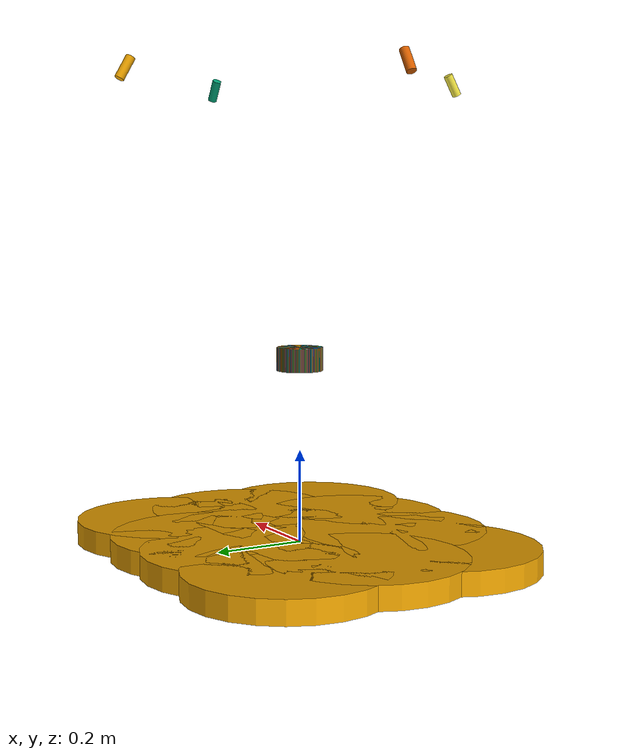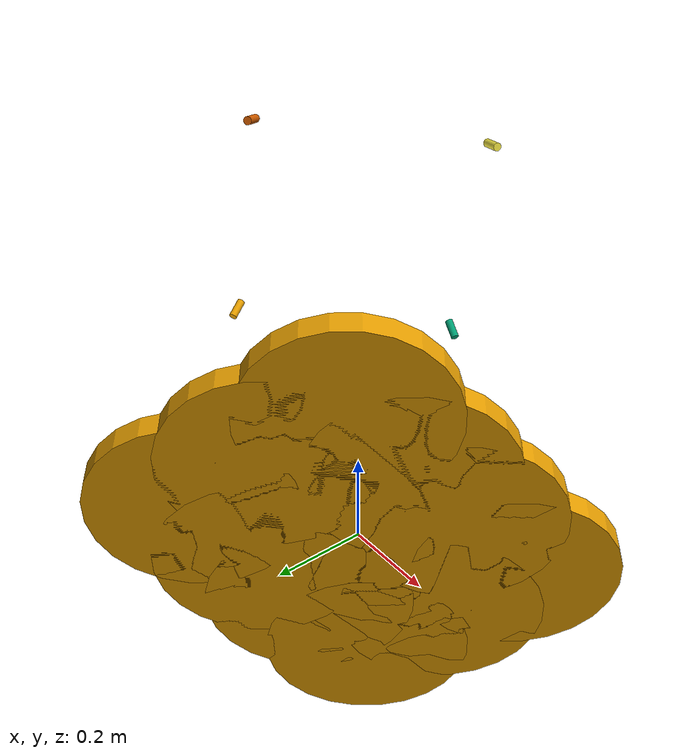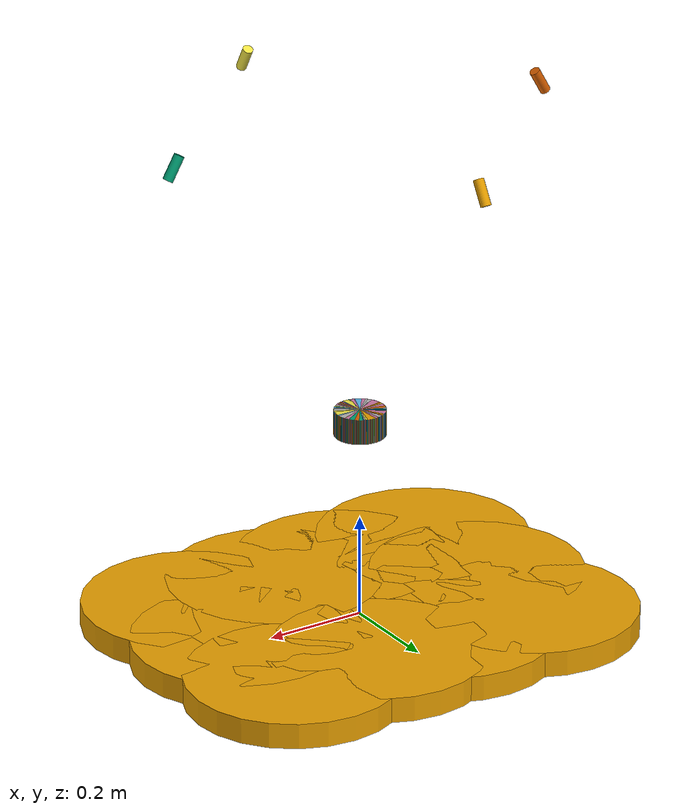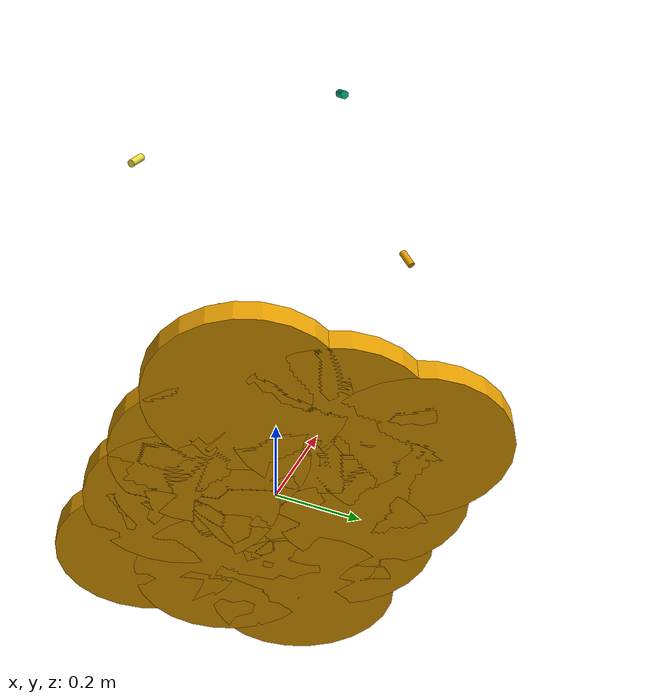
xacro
<?xml version="1.0"?>
<robot name="robot" xmlns:xacro="http://ros.org/wiki/xacro">

    <!-- Simulation Plugins -->
    <gazebo>
        <gravity>0</gravity>
        <self_collide>0</self_collide>

        <plugin name="gazebo_planar_move_plugin" filename="libgazebo_planar_move_plugin.so">
            <robot_namespace>/</robot_namespace>
            <robot_frame>base_link</robot_frame>
            <odometry_frame>odom</odometry_frame>
            <odometry_topic>odom</odometry_topic>
            <command_topic>cmd_vel</command_topic>
            <control_mode>position</control_mode>
            <publish_odometry>true</publish_odometry>
            <publish_tf>true</publish_tf>
        </plugin>
    </gazebo>

    <xacro:macro name="robot_circle" params="x_offset y_offset radius">
        <visual>
            <origin xyz="${x_offset} ${y_offset} 0" />
            <geometry>
                <cylinder length="0.05" radius="${radius}" />
            </geometry>
        </visual>
        <collision>
            <origin xyz="${x_offset} ${y_offset} 0" />
            <geometry>
                <cylinder length="0.05" radius="${radius}" />
            </geometry>
        </collision>
    </xacro:macro>

    <link name="base_link">
        <xacro:robot_circle x_offset="-0.268" y_offset=" 0.000" radius="0.210" />
        <xacro:robot_circle x_offset=" 0.268" y_offset=" 0.000" radius="0.210" />
        <xacro:robot_circle x_offset=" 0.265" y_offset="-0.185" radius="0.210" />
        <xacro:robot_circle x_offset=" 0.077" y_offset="-0.185" radius="0.210" />
        <xacro:robot_circle x_offset="-0.077" y_offset="-0.185" radius="0.210" />
        <xacro:robot_circle x_offset="-0.265" y_offset="-0.185" radius="0.210" />
        <xacro:robot_circle x_offset=" 0.265" y_offset=" 0.185" radius="0.210" />
        <xacro:robot_circle x_offset="-0.265" y_offset=" 0.185" radius="0.210" />
        <xacro:robot_circle x_offset="-0.077" y_offset=" 0.185" radius="0.210" />
        <xacro:robot_circle x_offset=" 0.077" y_offset=" 0.185" radius="0.210" />
        <inertial>
            <origin xyz="0 0 0" rpy="0 0 0" />
            <mass value="1" />
            <inertia
                ixx="1" ixy="0" ixz="0"
                iyy="1" iyz="0"
                izz="1" />
        </inertial>
    </link>

    <xacro:macro name="laser_sensor" params="suffix rotation">
        <joint name="laser_joint_${suffix}" type="fixed">
            <origin xyz="0 0 0.4" rpy="0 0 ${rotation}" />
            <child link="laser_${suffix}" />
            <parent link="base_link" />
        </joint>
        <link name="laser_${suffix}">
            <visual>
                <origin xyz="0 0 0" />
                <geometry>
                    <cylinder length="0.05" radius="0.05" />
                </geometry>
            </visual>
            <collision>
                <origin xyz="0 0 0" />
                <geometry>
                    <cylinder length="0.05" radius="0.05" />
                </geometry>
            </collision>
            <inertial>
                <mass value="1" />
                <origin xyz="0 0 0" />
                <inertia
                    ixx="1" ixy="0" ixz="0"
                    iyy="1" iyz="0"
                    izz="1" />
            </inertial>
        </link>
        <gazebo reference="laser_${suffix}">
            <sensor type="ray" name="laser_${suffix}">
                <pose>0 0 0 0 0 0</pose>
                <visualize>false</visualize>
                <update_rate>40</update_rate>
                <ray>
                    <scan>
                        <horizontal>
                            <samples>540</samples>
                            <resolution>1</resolution>
                            <min_angle>-2.35619</min_angle>
                            <max_angle>2.35619</max_angle>
                        </horizontal>
                    </scan>
                    <range>
                        <min>0.1</min>
                        <max>30.0</max>
                        <resolution>0.01</resolution>
                    </range>
                    <noise>
                        <type>gaussian</type>
                        <mean>0.0</mean>
                        <stddev>0.001</stddev>
                    </noise>
                </ray>
                <plugin name="gazebo_laser_plugin" filename="libgazebo_laser_plugin.so">
                    <frame_name>laser_${suffix}</frame_name>
                    <robot_namespace>/</robot_namespace>
                </plugin>
            </sensor>
        </gazebo>
    </xacro:macro>

    <xacro:laser_sensor suffix="front" rotation="0.0" />
    <xacro:laser_sensor suffix="back" rotation="${pi}" />

    <xacro:macro name="sonar_sensor" params="suffix rotation">
        <joint name="sonar_${suffix}_joint" type="fixed">
            <origin xyz="0 0 0.4" rpy="0 0 ${rotation}" />
            <child link="sonar_${suffix}" />
            <parent link="base_link" />
        </joint>
        <link name="sonar_${suffix}">
            <visual>
                <origin xyz="0 0 0" />
                <geometry>
                    <cylinder length="0.05" radius="0.05" />
                </geometry>
            </visual>
            <collision>
                <origin xyz="0 0 0" />
                <geometry>
                    <cylinder length="0.05" radius="0.05" />
                </geometry>
            </collision>
            <inertial>
                <mass value="1" />
                <origin xyz="0 0 0" />
                <inertia
                    ixx="1" ixy="0" ixz="0"
                    iyy="1" iyz="0"
                    izz="1" />
            </inertial>
        </link>
        <gazebo reference="sonar_${suffix}">
            <sensor type="ray" name="sonar_${suffix}">
                <pose>0 0 0 0 0 0</pose>
                <visualize>false</visualize>
                <update_rate>10</update_rate>
                <ray>
                    <scan>
                        <horizontal>
                            <samples>10</samples>
                            <resolution>1</resolution>
                            <min_angle>-0.4</min_angle>
                            <max_angle>0.4</max_angle>
                        </horizontal>
                        <vertical>
                            <samples>10</samples>
                            <resolution>1</resolution>
                            <min_angle>-0.2</min_angle>
                            <max_angle>0.2</max_angle>
                        </vertical>
                    </scan>
                    <range>
                        <min>0.15</min>
                        <max>1.5</max>
                        <resolution>0.01</resolution>
                    </range>
                </ray>
                <plugin name="gazebo_range_plugin" filename="libgazebo_range_plugin.so">
                    <robot_namespace>/</robot_namespace>
                    <field_of_view>0.8</field_of_view>
                </plugin>
            </sensor>
        </gazebo>
    </xacro:macro>

    <xacro:sonar_sensor suffix="0" rotation="-3.0" />
    <xacro:sonar_sensor suffix="1" rotation="-2.5" />
    <xacro:sonar_sensor suffix="2" rotation="-2.0" />
    <xacro:sonar_sensor suffix="3" rotation="-1.5" />
    <xacro:sonar_sensor suffix="4" rotation="-1.0" />
    <xacro:sonar_sensor suffix="5" rotation="-0.5" />
    <xacro:sonar_sensor suffix="6" rotation="0.0" />
    <xacro:sonar_sensor suffix="7" rotation="0.5" />
    <xacro:sonar_sensor suffix="8" rotation="1.0" />
    <xacro:sonar_sensor suffix="9" rotation="1.5" />
    <xacro:sonar_sensor suffix="10" rotation="2.0" />
    <xacro:sonar_sensor suffix="11" rotation="2.5" />
    <xacro:sonar_sensor suffix="12" rotation="3.0" />

    <xacro:macro name="realsense_sensor" params="suffix tilt *origin">
        <joint name="realsense_joint_${suffix}" type="fixed">
            <xacro:insert_block name="origin" />
            <child link="realsense_${suffix}" />
            <parent link="base_link" />
        </joint>
        <link name="realsense_${suffix}"></link>
        <joint name="realsense_joint_${suffix}_tilt" type="fixed">
            <origin xyz="0 0 0" rpy="0 ${tilt} 0" />
            <child link="realsense_${suffix}_tilt" />
            <parent link="realsense_${suffix}" />
        </joint>
        <link name="realsense_${suffix}_tilt"></link>
        <joint name="realsense_${suffix}_camera_joint" type="fixed">
            <origin xyz="0 0 0" rpy="${-pi/2} 0 ${-pi/2}" />
            <parent link="realsense_${suffix}_tilt" />
            <child link="realsense_${suffix}_camera" />
        </joint>
        <link name="realsense_${suffix}_camera">
            <visual>
                <origin xyz="0 0 0" />
                <geometry>
                    <cylinder length="0.05" radius="0.01" />
                </geometry>
            </visual>
            <collision>
                <origin xyz="0 0 0" />
                <geometry>
                    <cylinder length="0.05" radius="0.01" />
                </geometry>
            </collision>
            <inertial>
                <mass value="1" />
                <origin xyz="0 0 0" />
                <inertia
                    ixx="1" ixy="0" ixz="0"
                    iyy="1" iyz="0"
                    izz="1" />
            </inertial>
        </link>
        <gazebo reference="realsense_${suffix}_tilt">
            <sensor type="depth" name="realsense_${suffix}">
                <always_on>1</always_on>
                <update_rate>4</update_rate>
                <visualize>true</visualize>
                <camera name="realsense_${suffix}">
                    <horizontal_fov>${85.2 * pi / 180.0}</horizontal_fov>
                    <image>
                        <width>480</width>
                        <height>270</height>
                        <format>R8G8B8</format>
                    </image>
                    <depth_camera></depth_camera>
                    <clip>
                        <near>0.1</near>
                        <far>10</far>
                    </clip>
                </camera>
                <depth_camera></depth_camera>
                <plugin name="gazebo_depth_plugin" filename="libgazebo_depth_plugin.so">
                    <updateRate>4</updateRate>
                    <frame_name>realsense_${suffix}_camera</frame_name>
                </plugin>
            </sensor>
        </gazebo>
    </xacro:macro>

    <xacro:realsense_sensor suffix="front" tilt="${-pi / 6}">
        <origin xyz="0.4 0.0 1.0" rpy="${-pi / 2} ${pi / 2} ${-pi / 2}" />
    </xacro:realsense_sensor>

    <xacro:realsense_sensor suffix="back" tilt="${-pi / 6}">
        <origin xyz="-0.4 0.0 1.0" rpy="${-pi / 2} ${pi / 2} ${pi / 2}" />
    </xacro:realsense_sensor>

    <xacro:realsense_sensor suffix="left" tilt="${-pi / 6}">
        <origin xyz="0.0 0.4 1.0" rpy="${-pi / 2} ${pi / 2} 0" />
    </xacro:realsense_sensor>

    <xacro:realsense_sensor suffix="right" tilt="${-pi / 6}">
        <origin xyz="0.0 -0.4 1.0" rpy="${-pi / 2} ${pi / 2} ${pi}" />
    </xacro:realsense_sensor>

</robot>
